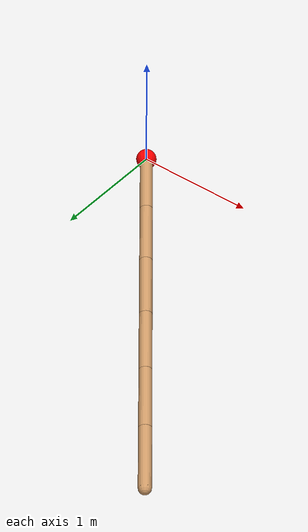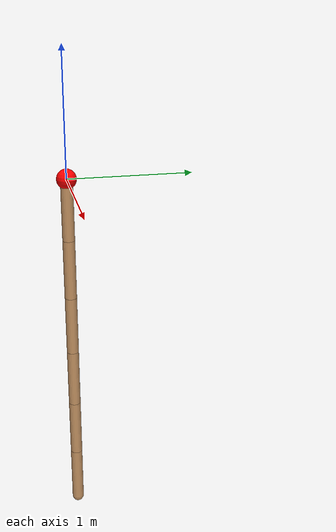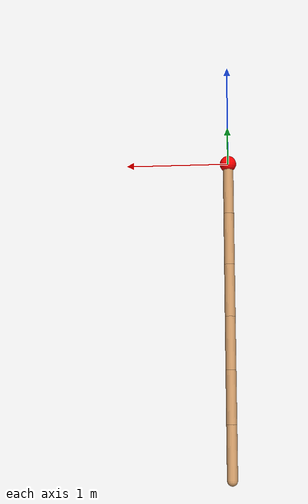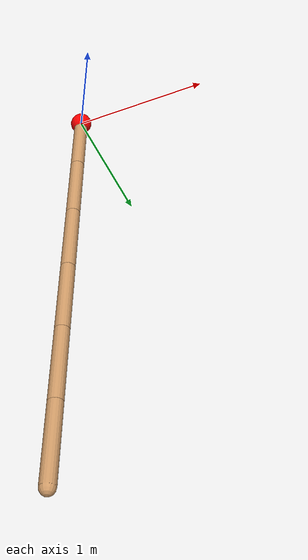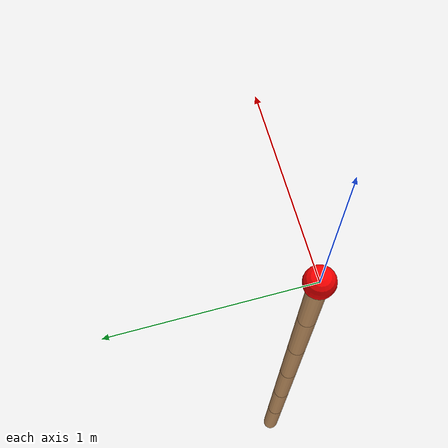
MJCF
<mujoco model="hinge_chain">
  <!-- 编译选项 -->
  <compiler angle="radian" coordinate="local"/>

  <!-- 选项设置 -->
  <option gravity="0 0 -9.81" timestep="0.002" integrator="RK4"/>

  <!-- 视觉设置 -->
  <visual>
    <global offwidth="1920" offheight="1080"/>
    <quality shadowsize="4096"/>
    <map force="0.1" fogstart="3" fogend="5"/>
  </visual>

  <!-- 默认值设置 -->
  <default>
    <geom rgba="0.8 0.6 0.4 1" density="1000"/>
    <joint damping="0.1" armature="0.01"/>
  </default>

  <!-- 资源定义 -->
  <asset>
    <texture name="grid" type="2d" builtin="checker" width="512" height="512"
             rgb1=".1 .2 .3" rgb2=".2 .3 .4"/>
    <material name="grid" texture="grid" texrepeat="1 1" texuniform="true" reflectance=".2"/>
    <material name="capsule_mat" rgba="0.7 0.5 0.3 1" specular="0.5" shininess="0.5"/>
  </asset>

  <!-- 世界体 -->
  <worldbody>
    <!-- 地面（降低到-10，让链条不会碰到） -->
    <geom name="floor" pos="0 0 -10" size="0 0 .25" type="plane" material="grid" condim="3"/>

    <!-- 光源 -->
    <light directional="true" diffuse=".8 .8 .8" specular=".2 .2 .2" pos="0 0 5" dir="0 0 -1"/>
    <light directional="true" diffuse=".4 .4 .4" pos="0 0 -5" dir="0 0 1"/>

    <!-- 固定点标记 -->
    <body name="anchor" pos="0 0 0">
      <geom name="anchor_point" type="sphere" size="0.08" rgba="1 0 0 1" mass="0.001"/>

      <!-- 第一个Capsule -->
      <body name="capsule1" pos="0 0 -0.25">
        <!-- Capsule以body为中心，向上向下各0.25m -->
        <geom name="geom1" type="capsule" fromto="0 0 0.25 0 0 -0.25" size="0.05" material="capsule_mat"/>
        <!-- 铰链在body位置，即capsule顶端 -->
        <joint name="hinge1" type="hinge" pos="0 0 0.25" axis="1 0 0" limited="false"/>

        <!-- 第二个Capsule，相对于上一个body向下0.5m（一个capsule长度） -->
        <body name="capsule2" pos="0 0 -0.5">
          <geom name="geom2" type="capsule" fromto="0 0 0.25 0 0 -0.25" size="0.05" material="capsule_mat"/>
          <joint name="hinge2" type="hinge" pos="0 0 0.25" axis="0 1 0" limited="false"/>

          <!-- 第三个Capsule -->
          <body name="capsule3" pos="0 0 -0.5">
            <geom name="geom3" type="capsule" fromto="0 0 0.25 0 0 -0.25" size="0.05" material="capsule_mat"/>
            <joint name="hinge3" type="hinge" pos="0 0 0.25" axis="1 0 0" limited="false"/>

            <!-- 第四个Capsule -->
            <body name="capsule4" pos="0 0 -0.5">
              <geom name="geom4" type="capsule" fromto="0 0 0.25 0 0 -0.25" size="0.05" material="capsule_mat"/>
              <joint name="hinge4" type="hinge" pos="0 0 0.25" axis="0 1 0" limited="false"/>

              <!-- 第五个Capsule -->
              <body name="capsule5" pos="0 0 -0.5">
                <geom name="geom5" type="capsule" fromto="0 0 0.25 0 0 -0.25" size="0.05" material="capsule_mat"/>
                <joint name="hinge5" type="hinge" pos="0 0 0.25" axis="1 0 0" limited="false"/>

                <!-- 第六个Capsule -->
                <body name="capsule6" pos="0 0 -0.5">
                  <geom name="geom6" type="capsule" fromto="0 0 0.25 0 0 -0.25" size="0.05" material="capsule_mat"/>
                  <joint name="hinge6" type="hinge" pos="0 0 0.25" axis="0 1 0" limited="false"/>
                </body>
              </body>
            </body>
          </body>
        </body>
      </body>
    </body>
  </worldbody>
</mujoco>
